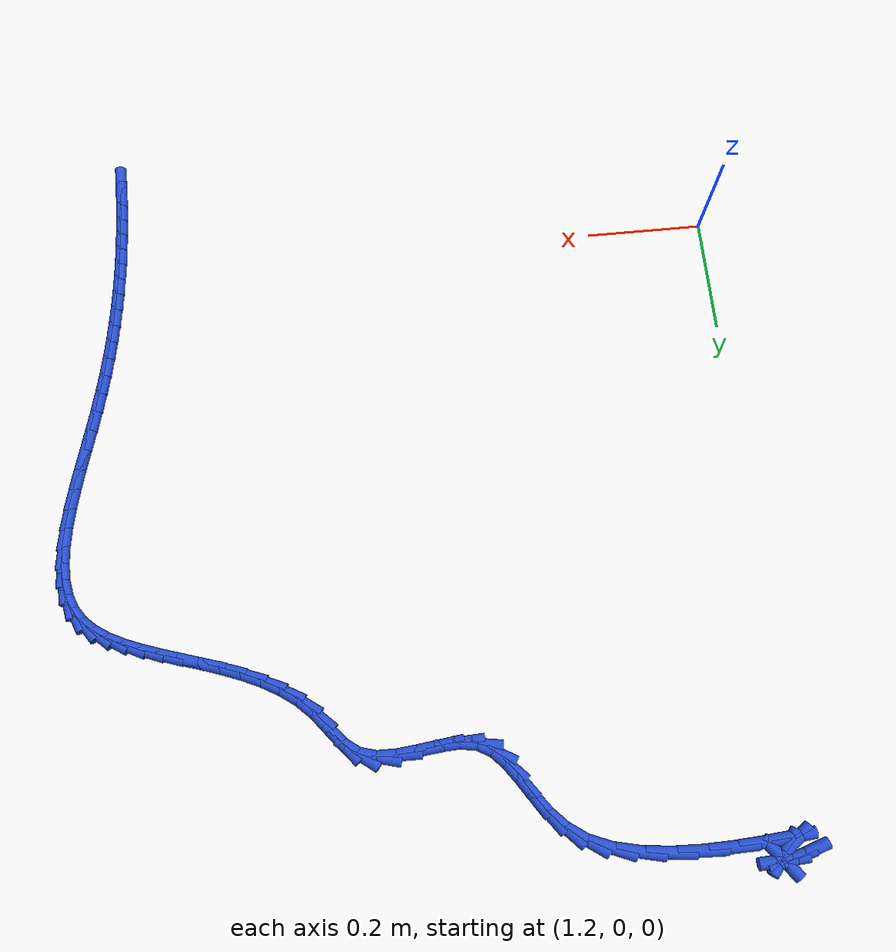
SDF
<sdf version="1.6">
 <world name="default">
  <model name="ground_plane">
   <static>1</static>
   <link name="link">
    <collision name="collision">
     <geometry><plane><normal>0 0 1</normal><size>100 100</size></plane></geometry>
     <surface><friction><ode><mu>100</mu><mu2>50</mu2></ode></friction></surface>
    </collision>
    <visual name="visual">
     <cast_shadows>0</cast_shadows>
     <geometry><plane><normal>0 0 1</normal><size>100 100</size></plane></geometry>
     <material>
      <script><uri>file://media/materials/scripts/gazebo.material</uri><name>Gazebo/WhiteGlow</name></script>
     </material>
    </visual>
   </link>
  </model>
  <model name="line">
   <link name="link_64">
    <pose>1.2322787857969568 1.0753080936451365 0.01 0 1.57 0.6627990967826926</pose>
    <collision name="collision">
     <geometry><cylinder><radius>0.01</radius><length>0.08</length></cylinder></geometry>
    </collision>
    <visual name="visual">
     <material>
      <script><name>Gazebo/Blue</name><uri>file://media/materials/scripts/gazebo.material</uri></script>
     </material>
     <geometry><cylinder><radius>0.01</radius><length>0.08</length></cylinder></geometry>
    </visual>
   </link>
   <link name="link_65">
    <pose>1.2459410916503009 1.0859728867347738 0.01 0 1.57 0.9153437566889868</pose>
    <collision name="collision">
     <geometry><cylinder><radius>0.01</radius><length>0.08</length></cylinder></geometry>
    </collision>
    <visual name="visual">
     <material>
      <script><name>Gazebo/Blue</name><uri>file://media/materials/scripts/gazebo.material</uri></script>
     </material>
     <geometry><cylinder><radius>0.01</radius><length>0.08</length></cylinder></geometry>
    </visual>
   </link>
   <link name="link_66">
    <pose>1.2517358771027867 1.093509897773049 0.01 0 1.57 -0.9247986837453452</pose>
    <collision name="collision">
     <geometry><cylinder><radius>0.01</radius><length>0.08</length></cylinder></geometry>
    </collision>
    <visual name="visual">
     <material>
      <script><name>Gazebo/Blue</name><uri>file://media/materials/scripts/gazebo.material</uri></script>
     </material>
     <geometry><cylinder><radius>0.01</radius><length>0.08</length></cylinder></geometry>
    </visual>
   </link>
   <link name="link_67">
    <pose>1.2489097912743201 1.0972584788024045 0.01 0 1.57 0.05735336319084578</pose>
    <collision name="collision">
     <geometry><cylinder><radius>0.01</radius><length>0.08</length></cylinder></geometry>
    </collision>
    <visual name="visual">
     <material>
      <script><name>Gazebo/Blue</name><uri>file://media/materials/scripts/gazebo.material</uri></script>
     </material>
     <geometry><cylinder><radius>0.01</radius><length>0.08</length></cylinder></geometry>
    </visual>
   </link>
   <link name="link_68">
    <pose>1.2367094832848076 1.0965579818652826 0.01 0 1.57 0.2545740996486978</pose>
    <collision name="collision">
     <geometry><cylinder><radius>0.01</radius><length>0.08</length></cylinder></geometry>
    </collision>
    <visual name="visual">
     <material>
      <script><name>Gazebo/Blue</name><uri>file://media/materials/scripts/gazebo.material</uri></script>
     </material>
     <geometry><cylinder><radius>0.01</radius><length>0.08</length></cylinder></geometry>
    </visual>
   </link>
   <link name="link_69">
    <pose>1.214381984725351 1.0907479206085327 0.01 0 1.57 0.33034324934001646</pose>
    <collision name="collision">
     <geometry><cylinder><radius>0.01</radius><length>0.08</length></cylinder></geometry>
    </collision>
    <visual name="visual">
     <material>
      <script><name>Gazebo/Blue</name><uri>file://media/materials/scripts/gazebo.material</uri></script>
     </material>
     <geometry><cylinder><radius>0.01</radius><length>0.08</length></cylinder></geometry>
    </visual>
   </link>
   <link name="link_77">
    <pose>1.2324341441938962 1.0644698188040418 0.01 0 1.57 0.0893377347609236</pose>
    <collision name="collision">
     <geometry><cylinder><radius>0.01</radius><length>0.08</length></cylinder></geometry>
    </collision>
    <visual name="visual">
     <material>
      <script><name>Gazebo/Blue</name><uri>file://media/materials/scripts/gazebo.material</uri></script>
     </material>
     <geometry><cylinder><radius>0.01</radius><length>0.08</length></cylinder></geometry>
    </visual>
   </link>
   <link name="link_78">
    <pose>1.2752370192145204 1.0683039364572133 0.01 0 1.57 0.061073721042350586</pose>
    <collision name="collision">
     <geometry><cylinder><radius>0.01</radius><length>0.08</length></cylinder></geometry>
    </collision>
    <visual name="visual">
     <material>
      <script><name>Gazebo/Blue</name><uri>file://media/materials/scripts/gazebo.material</uri></script>
     </material>
     <geometry><cylinder><radius>0.01</radius><length>0.08</length></cylinder></geometry>
    </visual>
   </link>
   <link name="link_79">
    <pose>1.3216587706951255 1.0711426158595567 0.01 0 1.57 0.0203929105236451</pose>
    <collision name="collision">
     <geometry><cylinder><radius>0.01</radius><length>0.08</length></cylinder></geometry>
    </collision>
    <visual name="visual">
     <material>
      <script><name>Gazebo/Blue</name><uri>file://media/materials/scripts/gazebo.material</uri></script>
     </material>
     <geometry><cylinder><radius>0.01</radius><length>0.08</length></cylinder></geometry>
    </visual>
   </link>
   <link name="link_80">
    <pose>1.3698668352110581 1.072125854909664 0.01 0 1.57 -0.035950827467834644</pose>
    <collision name="collision">
     <geometry><cylinder><radius>0.01</radius><length>0.08</length></cylinder></geometry>
    </collision>
    <visual name="visual">
     <material>
      <script><name>Gazebo/Blue</name><uri>file://media/materials/scripts/gazebo.material</uri></script>
     </material>
     <geometry><cylinder><radius>0.01</radius><length>0.08</length></cylinder></geometry>
    </visual>
   </link>
   <link name="link_81">
    <pose>1.4180286493376697 1.070393651506128 0.01 0 1.57 -0.11417934702417244</pose>
    <collision name="collision">
     <geometry><cylinder><radius>0.01</radius><length>0.08</length></cylinder></geometry>
    </collision>
    <visual name="visual">
     <material>
      <script><name>Gazebo/Blue</name><uri>file://media/materials/scripts/gazebo.material</uri></script>
     </material>
     <geometry><cylinder><radius>0.01</radius><length>0.08</length></cylinder></geometry>
    </visual>
   </link>
   <link name="link_82">
    <pose>1.4643116496503066 1.0650860035475411 0.01 0 1.57 -0.22498880895736634</pose>
    <collision name="collision">
     <geometry><cylinder><radius>0.01</radius><length>0.08</length></cylinder></geometry>
    </collision>
    <visual name="visual">
     <material>
      <script><name>Gazebo/Blue</name><uri>file://media/materials/scripts/gazebo.material</uri></script>
     </material>
     <geometry><cylinder><radius>0.01</radius><length>0.08</length></cylinder></geometry>
    </visual>
   </link>
   <link name="link_83">
    <pose>1.506883272724317 1.0553429089324953 0.01 0 1.57 -0.3857910404454256</pose>
    <collision name="collision">
     <geometry><cylinder><radius>0.01</radius><length>0.08</length></cylinder></geometry>
    </collision>
    <visual name="visual">
     <material>
      <script><name>Gazebo/Blue</name><uri>file://media/materials/scripts/gazebo.material</uri></script>
     </material>
     <geometry><cylinder><radius>0.01</radius><length>0.08</length></cylinder></geometry>
    </visual>
   </link>
   <link name="link_84">
    <pose>1.54391095513505 1.0403043655595832 0.01 0 1.57 -0.6079140005670933</pose>
    <collision name="collision">
     <geometry><cylinder><radius>0.01</radius><length>0.08</length></cylinder></geometry>
    </collision>
    <visual name="visual">
     <material>
      <script><name>Gazebo/Blue</name><uri>file://media/materials/scripts/gazebo.material</uri></script>
     </material>
     <geometry><cylinder><radius>0.01</radius><length>0.08</length></cylinder></geometry>
    </visual>
   </link>
   <link name="link_85">
    <pose>1.573930439409148 1.0194162562277398 0.01 0 1.57 -0.8117997148209194</pose>
    <collision name="collision">
     <geometry><cylinder><radius>0.01</radius><length>0.08</length></cylinder></geometry>
    </collision>
    <visual name="visual">
     <material>
      <script><name>Gazebo/Blue</name><uri>file://media/materials/scripts/gazebo.material</uri></script>
     </material>
     <geometry><cylinder><radius>0.01</radius><length>0.08</length></cylinder></geometry>
    </visual>
   </link>
   <link name="link_86">
    <pose>1.597905292503343 0.9941408168011628 0.01 0 1.57 -0.9429371162151671</pose>
    <collision name="collision">
     <geometry><cylinder><radius>0.01</radius><length>0.08</length></cylinder></geometry>
    </collision>
    <visual name="visual">
     <material>
      <script><name>Gazebo/Blue</name><uri>file://media/materials/scripts/gazebo.material</uri></script>
     </material>
     <geometry><cylinder><radius>0.01</radius><length>0.08</length></cylinder></geometry>
    </visual>
   </link>
   <link name="link_87">
    <pose>1.617781917832077 0.966756546988994 0.01 0 1.57 -0.9933990592748085</pose>
    <collision name="collision">
     <geometry><cylinder><radius>0.01</radius><length>0.08</length></cylinder></geometry>
    </collision>
    <visual name="visual">
     <material>
      <script><name>Gazebo/Blue</name><uri>file://media/materials/scripts/gazebo.material</uri></script>
     </material>
     <geometry><cylinder><radius>0.01</radius><length>0.08</length></cylinder></geometry>
    </visual>
   </link>
   <link name="link_88">
    <pose>1.6355094973933693 0.9395442541653972 0.01 0 1.57 -0.9547756335112859</pose>
    <collision name="collision">
     <geometry><cylinder><radius>0.01</radius><length>0.08</length></cylinder></geometry>
    </collision>
    <visual name="visual">
     <material>
      <script><name>Gazebo/Blue</name><uri>file://media/materials/scripts/gazebo.material</uri></script>
     </material>
     <geometry><cylinder><radius>0.01</radius><length>0.08</length></cylinder></geometry>
    </visual>
   </link>
   <link name="link_89">
    <pose>1.6530372131852389 0.9147847457045346 0.01 0 1.57 -0.804449966875273</pose>
    <collision name="collision">
     <geometry><cylinder><radius>0.01</radius><length>0.08</length></cylinder></geometry>
    </collision>
    <visual name="visual">
     <material>
      <script><name>Gazebo/Blue</name><uri>file://media/materials/scripts/gazebo.material</uri></script>
     </material>
     <geometry><cylinder><radius>0.01</radius><length>0.08</length></cylinder></geometry>
    </visual>
   </link>
   <link name="link_90">
    <pose>1.6723142472057069 0.8947588289805707 0.01 0 1.57 -0.5152869933899991</pose>
    <collision name="collision">
     <geometry><cylinder><radius>0.01</radius><length>0.08</length></cylinder></geometry>
    </collision>
    <visual name="visual">
     <material>
      <script><name>Gazebo/Blue</name><uri>file://media/materials/scripts/gazebo.material</uri></script>
     </material>
     <geometry><cylinder><radius>0.01</radius><length>0.08</length></cylinder></geometry>
    </visual>
   </link>
   <link name="link_91">
    <pose>1.6952897814527916 0.8817473113676679 0.01 0 1.57 -0.16192909802591032</pose>
    <collision name="collision">
     <geometry><cylinder><radius>0.01</radius><length>0.08</length></cylinder></geometry>
    </collision>
    <visual name="visual">
     <material>
      <script><name>Gazebo/Blue</name><uri>file://media/materials/scripts/gazebo.material</uri></script>
     </material>
     <geometry><cylinder><radius>0.01</radius><length>0.08</length></cylinder></geometry>
    </visual>
   </link>
   <link name="link_92">
    <pose>1.7233233265135468 0.8771677677691238 0.01 0 1.57 0.04747561229783782</pose>
    <collision name="collision">
     <geometry><cylinder><radius>0.01</radius><length>0.08</length></cylinder></geometry>
    </collision>
    <visual name="visual">
     <material>
      <script><name>Gazebo/Blue</name><uri>file://media/materials/scripts/gazebo.material</uri></script>
     </material>
     <geometry><cylinder><radius>0.01</radius><length>0.08</length></cylinder></geometry>
    </visual>
   </link>
   <link name="link_93">
    <pose>1.7552093233760797 0.8786827133606366 0.01 0 1.57 0.12498669931992888</pose>
    <collision name="collision">
     <geometry><cylinder><radius>0.01</radius><length>0.08</length></cylinder></geometry>
    </collision>
    <visual name="visual">
     <material>
      <script><name>Gazebo/Blue</name><uri>file://media/materials/scripts/gazebo.material</uri></script>
     </material>
     <geometry><cylinder><radius>0.01</radius><length>0.08</length></cylinder></geometry>
    </visual>
   </link>
   <link name="link_94">
    <pose>1.789044913613421 0.882933871931693 0.01 0 1.57 0.10670145139160071</pose>
    <collision name="collision">
     <geometry><cylinder><radius>0.01</radius><length>0.08</length></cylinder></geometry>
    </collision>
    <visual name="visual">
     <material>
      <script><name>Gazebo/Blue</name><uri>file://media/materials/scripts/gazebo.material</uri></script>
     </material>
     <geometry><cylinder><radius>0.01</radius><length>0.08</length></cylinder></geometry>
    </visual>
   </link>
   <link name="link_95">
    <pose>1.8229272247840544 0.8865629467555886 0.01 0 1.57 -0.01096889431186168</pose>
    <collision name="collision">
     <geometry><cylinder><radius>0.01</radius><length>0.08</length></cylinder></geometry>
    </collision>
    <visual name="visual">
     <material>
      <script><name>Gazebo/Blue</name><uri>file://media/materials/scripts/gazebo.material</uri></script>
     </material>
     <geometry><cylinder><radius>0.01</radius><length>0.08</length></cylinder></geometry>
    </visual>
   </link>
   <link name="link_96">
    <pose>1.8549533844464638 0.8862116411056183 0.01 0 1.57 -0.2656185449410486</pose>
    <collision name="collision">
     <geometry><cylinder><radius>0.01</radius><length>0.08</length></cylinder></geometry>
    </collision>
    <visual name="visual">
     <material>
      <script><name>Gazebo/Blue</name><uri>file://media/materials/scripts/gazebo.material</uri></script>
     </material>
     <geometry><cylinder><radius>0.01</radius><length>0.08</length></cylinder></geometry>
    </visual>
   </link>
   <link name="link_97">
    <pose>1.8832205201591337 0.8785216582550777 0.01 0 1.57 -0.6513025765352614</pose>
    <collision name="collision">
     <geometry><cylinder><radius>0.01</radius><length>0.08</length></cylinder></geometry>
    </collision>
    <visual name="visual">
     <material>
      <script><name>Gazebo/Blue</name><uri>file://media/materials/scripts/gazebo.material</uri></script>
     </material>
     <geometry><cylinder><radius>0.01</radius><length>0.08</length></cylinder></geometry>
    </visual>
   </link>
   <link name="link_98">
    <pose>1.906309706336338 0.8609216539378196 0.01 0 1.57 -0.8853481739180395</pose>
    <collision name="collision">
     <geometry><cylinder><radius>0.01</radius><length>0.08</length></cylinder></geometry>
    </collision>
    <visual name="visual">
     <material>
      <script><name>Gazebo/Blue</name><uri>file://media/materials/scripts/gazebo.material</uri></script>
     </material>
     <geometry><cylinder><radius>0.01</radius><length>0.08</length></cylinder></geometry>
    </visual>
   </link>
   <link name="link_99">
    <pose>1.9262812713524913 0.8364979453273307 0.01 0 1.57 -0.8987403721315249</pose>
    <collision name="collision">
     <geometry><cylinder><radius>0.01</radius><length>0.08</length></cylinder></geometry>
    </collision>
    <visual name="visual">
     <material>
      <script><name>Gazebo/Blue</name><uri>file://media/materials/scripts/gazebo.material</uri></script>
     </material>
     <geometry><cylinder><radius>0.01</radius><length>0.08</length></cylinder></geometry>
    </visual>
   </link>
   <link name="link_100">
    <pose>1.9467174371078002 0.810811657740041 0.01 0 1.57 -0.7631339550228122</pose>
    <collision name="collision">
     <geometry><cylinder><radius>0.01</radius><length>0.08</length></cylinder></geometry>
    </collision>
    <visual name="visual">
     <material>
      <script><name>Gazebo/Blue</name><uri>file://media/materials/scripts/gazebo.material</uri></script>
     </material>
     <geometry><cylinder><radius>0.01</radius><length>0.08</length></cylinder></geometry>
    </visual>
   </link>
   <link name="link_101">
    <pose>1.970353862017701 0.7882049692925082 0.01 0 1.57 -0.622940007990397</pose>
    <collision name="collision">
     <geometry><cylinder><radius>0.01</radius><length>0.08</length></cylinder></geometry>
    </collision>
    <visual name="visual">
     <material>
      <script><name>Gazebo/Blue</name><uri>file://media/materials/scripts/gazebo.material</uri></script>
     </material>
     <geometry><cylinder><radius>0.01</radius><length>0.08</length></cylinder></geometry>
    </visual>
   </link>
   <link name="link_102">
    <pose>1.9971208306777959 0.7689767357358488 0.01 0 1.57 -0.5104850724294512</pose>
    <collision name="collision">
     <geometry><cylinder><radius>0.01</radius><length>0.08</length></cylinder></geometry>
    </collision>
    <visual name="visual">
     <material>
      <script><name>Gazebo/Blue</name><uri>file://media/materials/scripts/gazebo.material</uri></script>
     </material>
     <geometry><cylinder><radius>0.01</radius><length>0.08</length></cylinder></geometry>
    </visual>
   </link>
   <link name="link_103">
    <pose>2.0263727362816715 0.752595793459987 0.01 0 1.57 -0.4248250013085162</pose>
    <collision name="collision">
     <geometry><cylinder><radius>0.01</radius><length>0.08</length></cylinder></geometry>
    </collision>
    <visual name="visual">
     <material>
      <script><name>Gazebo/Blue</name><uri>file://media/materials/scripts/gazebo.material</uri></script>
     </material>
     <geometry><cylinder><radius>0.01</radius><length>0.08</length></cylinder></geometry>
    </visual>
   </link>
   <link name="link_104">
    <pose>2.057463972022912 0.7385309788548476 0.01 0 1.57 -0.36346001912226156</pose>
    <collision name="collision">
     <geometry><cylinder><radius>0.01</radius><length>0.08</length></cylinder></geometry>
    </collision>
    <visual name="visual">
     <material>
      <script><name>Gazebo/Blue</name><uri>file://media/materials/scripts/gazebo.material</uri></script>
     </material>
     <geometry><cylinder><radius>0.01</radius><length>0.08</length></cylinder></geometry>
    </visual>
   </link>
   <link name="link_105">
    <pose>2.089748931095104 0.7262511283103554 0.01 0 1.57 -0.32398815911208334</pose>
    <collision name="collision">
     <geometry><cylinder><radius>0.01</radius><length>0.08</length></cylinder></geometry>
    </collision>
    <visual name="visual">
     <material>
      <script><name>Gazebo/Blue</name><uri>file://media/materials/scripts/gazebo.material</uri></script>
     </material>
     <geometry><cylinder><radius>0.01</radius><length>0.08</length></cylinder></geometry>
    </visual>
   </link>
   <link name="link_106">
    <pose>2.122582006691831 0.7152250782164346 0.01 0 1.57 -0.30493025616023683</pose>
    <collision name="collision">
     <geometry><cylinder><radius>0.01</radius><length>0.08</length></cylinder></geometry>
    </collision>
    <visual name="visual">
     <material>
      <script><name>Gazebo/Blue</name><uri>file://media/materials/scripts/gazebo.material</uri></script>
     </material>
     <geometry><cylinder><radius>0.01</radius><length>0.08</length></cylinder></geometry>
    </visual>
   </link>
   <link name="link_107">
    <pose>2.155317592006679 0.7049216649630101 0.01 0 1.57 -0.30613604962067253</pose>
    <collision name="collision">
     <geometry><cylinder><radius>0.01</radius><length>0.08</length></cylinder></geometry>
    </collision>
    <visual name="visual">
     <material>
      <script><name>Gazebo/Blue</name><uri>file://media/materials/scripts/gazebo.material</uri></script>
     </material>
     <geometry><cylinder><radius>0.01</radius><length>0.08</length></cylinder></geometry>
    </visual>
   </link>
   <link name="link_108">
    <pose>2.187310080233234 0.6948097249400061 0.01 0 1.57 -0.3290952782153381</pose>
    <collision name="collision">
     <geometry><cylinder><radius>0.01</radius><length>0.08</length></cylinder></geometry>
    </collision>
    <visual name="visual">
     <material>
      <script><name>Gazebo/Blue</name><uri>file://media/materials/scripts/gazebo.material</uri></script>
     </material>
     <geometry><cylinder><radius>0.01</radius><length>0.08</length></cylinder></geometry>
    </visual>
   </link>
   <link name="link_109">
    <pose>2.2179138645650798 0.6843580945373476 0.01 0 1.57 -0.37732481878350177</pose>
    <collision name="collision">
     <geometry><cylinder><radius>0.01</radius><length>0.08</length></cylinder></geometry>
    </collision>
    <visual name="visual">
     <material>
      <script><name>Gazebo/Blue</name><uri>file://media/materials/scripts/gazebo.material</uri></script>
     </material>
     <geometry><cylinder><radius>0.01</radius><length>0.08</length></cylinder></geometry>
    </visual>
   </link>
   <link name="link_110">
    <pose>2.2464833381958025 0.6730356101449589 0.01 0 1.57 -0.45681783218908334</pose>
    <collision name="collision">
     <geometry><cylinder><radius>0.01</radius><length>0.08</length></cylinder></geometry>
    </collision>
    <visual name="visual">
     <material>
      <script><name>Gazebo/Blue</name><uri>file://media/materials/scripts/gazebo.material</uri></script>
     </material>
     <geometry><cylinder><radius>0.01</radius><length>0.08</length></cylinder></geometry>
    </visual>
   </link>
   <link name="link_111">
    <pose>2.2723728943189876 0.6603111081527647 0.01 0 1.57 -0.5760967210980454</pose>
    <collision name="collision">
     <geometry><cylinder><radius>0.01</radius><length>0.08</length></cylinder></geometry>
    </collision>
    <visual name="visual">
     <material>
      <script><name>Gazebo/Blue</name><uri>file://media/materials/scripts/gazebo.material</uri></script>
     </material>
     <geometry><cylinder><radius>0.01</radius><length>0.08</length></cylinder></geometry>
    </visual>
   </link>
   <link name="link_112">
    <pose>2.2949369261282198 0.6456534249506894 0.01 0 1.57 -0.7442377303676091</pose>
    <collision name="collision">
     <geometry><cylinder><radius>0.01</radius><length>0.08</length></cylinder></geometry>
    </collision>
    <visual name="visual">
     <material>
      <script><name>Gazebo/Blue</name><uri>file://media/materials/scripts/gazebo.material</uri></script>
     </material>
     <geometry><cylinder><radius>0.01</radius><length>0.08</length></cylinder></geometry>
    </visual>
   </link>
   <link name="link_113">
    <pose>2.3135298268170836 0.6285313969286579 0.01 0 1.57 -0.9622994435959389</pose>
    <collision name="collision">
     <geometry><cylinder><radius>0.01</radius><length>0.08</length></cylinder></geometry>
    </collision>
    <visual name="visual">
     <material>
      <script><name>Gazebo/Blue</name><uri>file://media/materials/scripts/gazebo.material</uri></script>
     </material>
     <geometry><cylinder><radius>0.01</radius><length>0.08</length></cylinder></geometry>
    </visual>
   </link>
   <link name="link_114">
    <pose>2.3275317237587765 0.6084334756344146 0.01 0 1.57 -1.1868864642344223</pose>
    <collision name="collision">
     <geometry><cylinder><radius>0.01</radius><length>0.08</length></cylinder></geometry>
    </collision>
    <visual name="visual">
     <material>
      <script><name>Gazebo/Blue</name><uri>file://media/materials/scripts/gazebo.material</uri></script>
     </material>
     <geometry><cylinder><radius>0.01</radius><length>0.08</length></cylinder></geometry>
    </visual>
   </link>
   <link name="link_115">
    <pose>2.336885758878763 0.5852772546930878 0.01 0 1.57 -1.3726277401988163</pose>
    <collision name="collision">
     <geometry><cylinder><radius>0.01</radius><length>0.08</length></cylinder></geometry>
    </collision>
    <visual name="visual">
     <material>
      <script><name>Gazebo/Blue</name><uri>file://media/materials/scripts/gazebo.material</uri></script>
     </material>
     <geometry><cylinder><radius>0.01</radius><length>0.08</length></cylinder></geometry>
    </visual>
   </link>
   <link name="link_116">
    <pose>2.342082501198636 0.5593975887052113 0.01 0 1.57 -1.5158930284974177</pose>
    <collision name="collision">
     <geometry><cylinder><radius>0.01</radius><length>0.08</length></cylinder></geometry>
    </collision>
    <visual name="visual">
     <material>
      <script><name>Gazebo/Blue</name><uri>file://media/materials/scripts/gazebo.material</uri></script>
     </material>
     <geometry><cylinder><radius>0.01</radius><length>0.08</length></cylinder></geometry>
    </visual>
   </link>
   <link name="link_117">
    <pose>2.3436351356579888 0.5311465706215426 0.01 0 1.57 1.5187036237567815</pose>
    <collision name="collision">
     <geometry><cylinder><radius>0.01</radius><length>0.08</length></cylinder></geometry>
    </collision>
    <visual name="visual">
     <material>
      <script><name>Gazebo/Blue</name><uri>file://media/materials/scripts/gazebo.material</uri></script>
     </material>
     <geometry><cylinder><radius>0.01</radius><length>0.08</length></cylinder></geometry>
    </visual>
   </link>
   <link name="link_118">
    <pose>2.342056847196416 0.5008762933928397 0.01 0 1.57 1.4401618771861944</pose>
    <collision name="collision">
     <geometry><cylinder><radius>0.01</radius><length>0.08</length></cylinder></geometry>
    </collision>
    <visual name="visual">
     <material>
      <script><name>Gazebo/Blue</name><uri>file://media/materials/scripts/gazebo.material</uri></script>
     </material>
     <geometry><cylinder><radius>0.01</radius><length>0.08</length></cylinder></geometry>
    </visual>
   </link>
   <link name="link_119">
    <pose>2.337860820753511 0.4689388499698602 0.01 0 1.57 1.3835394272772927</pose>
    <collision name="collision">
     <geometry><cylinder><radius>0.01</radius><length>0.08</length></cylinder></geometry>
    </collision>
    <visual name="visual">
     <material>
      <script><name>Gazebo/Blue</name><uri>file://media/materials/scripts/gazebo.material</uri></script>
     </material>
     <geometry><cylinder><radius>0.01</radius><length>0.08</length></cylinder></geometry>
    </visual>
   </link>
   <link name="link_120">
    <pose>2.331560241268868 0.43568633330336204 0.01 0 1.57 1.344106709751753</pose>
    <collision name="collision">
     <geometry><cylinder><radius>0.01</radius><length>0.08</length></cylinder></geometry>
    </collision>
    <visual name="visual">
     <material>
      <script><name>Gazebo/Blue</name><uri>file://media/materials/scripts/gazebo.material</uri></script>
     </material>
     <geometry><cylinder><radius>0.01</radius><length>0.08</length></cylinder></geometry>
    </visual>
   </link>
   <link name="link_121">
    <pose>2.323668293682081 0.40147083634410274 0.01 0 1.57 1.3187084666460172</pose>
    <collision name="collision">
     <geometry><cylinder><radius>0.01</radius><length>0.08</length></cylinder></geometry>
    </collision>
    <visual name="visual">
     <material>
      <script><name>Gazebo/Blue</name><uri>file://media/materials/scripts/gazebo.material</uri></script>
     </material>
     <geometry><cylinder><radius>0.01</radius><length>0.08</length></cylinder></geometry>
    </visual>
   </link>
   <link name="link_122">
    <pose>2.314698162932745 0.3666444520428404 0.01 0 1.57 1.3054346988096166</pose>
    <collision name="collision">
     <geometry><cylinder><radius>0.01</radius><length>0.08</length></cylinder></geometry>
    </collision>
    <visual name="visual">
     <material>
      <script><name>Gazebo/Blue</name><uri>file://media/materials/scripts/gazebo.material</uri></script>
     </material>
     <geometry><cylinder><radius>0.01</radius><length>0.08</length></cylinder></geometry>
    </visual>
   </link>
   <link name="link_123">
    <pose>2.3051630339604525 0.33155927335033314 0.01 0 1.57 1.3033821860151078</pose>
    <collision name="collision">
     <geometry><cylinder><radius>0.01</radius><length>0.08</length></cylinder></geometry>
    </collision>
    <visual name="visual">
     <material>
      <script><name>Gazebo/Blue</name><uri>file://media/materials/scripts/gazebo.material</uri></script>
     </material>
     <geometry><cylinder><radius>0.01</radius><length>0.08</length></cylinder></geometry>
    </visual>
   </link>
   <link name="link_124">
    <pose>2.295576091704798 0.29656739321733755 0.01 0 1.57 1.312541860084366</pose>
    <collision name="collision">
     <geometry><cylinder><radius>0.01</radius><length>0.08</length></cylinder></geometry>
    </collision>
    <visual name="visual">
     <material>
      <script><name>Gazebo/Blue</name><uri>file://media/materials/scripts/gazebo.material</uri></script>
     </material>
     <geometry><cylinder><radius>0.01</radius><length>0.08</length></cylinder></geometry>
    </visual>
   </link>
   <link name="link_125">
    <pose>2.286450521105376 0.26202090459461214 0.01 0 1.57 1.3317846937234477</pose>
    <collision name="collision">
     <geometry><cylinder><radius>0.01</radius><length>0.08</length></cylinder></geometry>
    </collision>
    <visual name="visual">
     <material>
      <script><name>Gazebo/Blue</name><uri>file://media/materials/scripts/gazebo.material</uri></script>
     </material>
     <geometry><cylinder><radius>0.01</radius><length>0.08</length></cylinder></geometry>
    </visual>
   </link>
   <link name="link_126">
    <pose>2.278210613486724 0.2282049734711137 0.01 0 1.57 1.3535139634608735</pose>
    <collision name="collision">
     <geometry><cylinder><radius>0.01</radius><length>0.08</length></cylinder></geometry>
    </collision>
    <visual name="visual">
     <material>
      <script><name>Gazebo/Blue</name><uri>file://media/materials/scripts/gazebo.material</uri></script>
     </material>
     <geometry><cylinder><radius>0.01</radius><length>0.08</length></cylinder></geometry>
    </visual>
   </link>
   <link name="link_127">
    <pose>2.270907338944146 0.19512369665402388 0.01 0 1.57 1.3754661673757167</pose>
    <collision name="collision">
     <geometry><cylinder><radius>0.01</radius><length>0.08</length></cylinder></geometry>
    </collision>
    <visual name="visual">
     <material>
      <script><name>Gazebo/Blue</name><uri>file://media/materials/scripts/gazebo.material</uri></script>
     </material>
     <geometry><cylinder><radius>0.01</radius><length>0.08</length></cylinder></geometry>
    </visual>
   </link>
   <link name="link_128">
    <pose>2.264493681358611 0.1627073982772079 0.01 0 1.57 1.3974780041109183</pose>
    <collision name="collision">
     <geometry><cylinder><radius>0.01</radius><length>0.08</length></cylinder></geometry>
    </collision>
    <visual name="visual">
     <material>
      <script><name>Gazebo/Blue</name><uri>file://media/materials/scripts/gazebo.material</uri></script>
     </material>
     <geometry><cylinder><radius>0.01</radius><length>0.08</length></cylinder></geometry>
    </visual>
   </link>
   <link name="link_129">
    <pose>2.2589226242117575 0.1308864021738752 0.01 0 1.57 1.4193708195004981</pose>
    <collision name="collision">
     <geometry><cylinder><radius>0.01</radius><length>0.08</length></cylinder></geometry>
    </collision>
    <visual name="visual">
     <material>
      <script><name>Gazebo/Blue</name><uri>file://media/materials/scripts/gazebo.material</uri></script>
     </material>
     <geometry><cylinder><radius>0.01</radius><length>0.08</length></cylinder></geometry>
    </visual>
   </link>
   <link name="link_130">
    <pose>2.2541471509852213 0.09959103217723547 0.01 0 1.57 1.4409543724583078</pose>
    <collision name="collision">
     <geometry><cylinder><radius>0.01</radius><length>0.08</length></cylinder></geometry>
    </collision>
    <visual name="visual">
     <material>
      <script><name>Gazebo/Blue</name><uri>file://media/materials/scripts/gazebo.material</uri></script>
     </material>
     <geometry><cylinder><radius>0.01</radius><length>0.08</length></cylinder></geometry>
    </visual>
   </link>
   <link name="link_131">
    <pose>2.2501202451606392 0.06875161212049832 0.01 0 1.57 1.4620314785129394</pose>
    <collision name="collision">
     <geometry><cylinder><radius>0.01</radius><length>0.08</length></cylinder></geometry>
    </collision>
    <visual name="visual">
     <material>
      <script><name>Gazebo/Blue</name><uri>file://media/materials/scripts/gazebo.material</uri></script>
     </material>
     <geometry><cylinder><radius>0.01</radius><length>0.08</length></cylinder></geometry>
    </visual>
   </link>
   <link name="link_132">
    <pose>2.2467948902196464 0.03829846583687327 0.01 0 1.57 1.4824032935072042</pose>
    <collision name="collision">
     <geometry><cylinder><radius>0.01</radius><length>0.08</length></cylinder></geometry>
    </collision>
    <visual name="visual">
     <material>
      <script><name>Gazebo/Blue</name><uri>file://media/materials/scripts/gazebo.material</uri></script>
     </material>
     <geometry><cylinder><radius>0.01</radius><length>0.08</length></cylinder></geometry>
    </visual>
   </link>
   <link name="link_133">
    <pose>2.244124069643879 0.008161917159569928 0.01 0 1.57 1.5018749356814312</pose>
    <collision name="collision">
     <geometry><cylinder><radius>0.01</radius><length>0.08</length></cylinder></geometry>
    </collision>
    <visual name="visual">
     <material>
      <script><name>Gazebo/Blue</name><uri>file://media/materials/scripts/gazebo.material</uri></script>
     </material>
     <geometry><cylinder><radius>0.01</radius><length>0.08</length></cylinder></geometry>
    </visual>
   </link>
   <link name="link_134">
    <pose>2.2420607669149746 -0.02172771007820168 0.01 0 1.57 1.520261102284428</pose>
    <collision name="collision">
     <geometry><cylinder><radius>0.01</radius><length>0.08</length></cylinder></geometry>
    </collision>
    <visual name="visual">
     <material>
      <script><name>Gazebo/Blue</name><uri>file://media/materials/scripts/gazebo.material</uri></script>
     </material>
     <geometry><cylinder><radius>0.01</radius><length>0.08</length></cylinder></geometry>
    </visual>
   </link>
   <link name="link_135">
    <pose>2.2405579655145687 -0.05144009204323289 0.01 0 1.57 1.537391333595772</pose>
    <collision name="collision">
     <geometry><cylinder><radius>0.01</radius><length>0.08</length></cylinder></geometry>
    </collision>
    <visual name="visual">
     <material>
      <script><name>Gazebo/Blue</name><uri>file://media/materials/scripts/gazebo.material</uri></script>
     </material>
     <geometry><cylinder><radius>0.01</radius><length>0.08</length></cylinder></geometry>
    </visual>
   </link>
   <link name="link_136">
    <pose>2.2395686489242967 -0.08104490490231406 0.01 0 1.57 1.55311461322802</pose>
    <collision name="collision">
     <geometry><cylinder><radius>0.01</radius><length>0.08</length></cylinder></geometry>
    </collision>
    <visual name="visual">
     <material>
      <script><name>Gazebo/Blue</name><uri>file://media/materials/scripts/gazebo.material</uri></script>
     </material>
     <geometry><cylinder><radius>0.01</radius><length>0.08</length></cylinder></geometry>
    </visual>
   </link>
   <link name="link_137">
    <pose>2.2390458006257963 -0.11061182482223433 0.01 0 1.57 1.5673029494745938</pose>
    <collision name="collision">
     <geometry><cylinder><radius>0.01</radius><length>0.08</length></cylinder></geometry>
    </collision>
    <visual name="visual">
     <material>
      <script><name>Gazebo/Blue</name><uri>file://media/materials/scripts/gazebo.material</uri></script>
     </material>
     <geometry><cylinder><radius>0.01</radius><length>0.08</length></cylinder></geometry>
    </visual>
   </link>
   <link name="link_138">
    <pose>2.238942400865114 -0.14021049985267667 0.01 0 1.57 -1.5617859374133634</pose>
    <collision name="collision">
     <geometry><cylinder><radius>0.01</radius><length>0.08</length></cylinder></geometry>
    </collision>
    <visual name="visual">
     <material>
      <script><name>Gazebo/Blue</name><uri>file://media/materials/scripts/gazebo.material</uri></script>
     </material>
     <geometry><cylinder><radius>0.01</radius><length>0.08</length></cylinder></geometry>
    </visual>
   </link>
   <link name="link_139">
    <pose>2.239209897378097 -0.16989726060483296 0.01 0 1.57 -1.5511367854607256</pose>
    <collision name="collision">
     <geometry><cylinder><radius>0.01</radius><length>0.08</length></cylinder></geometry>
    </collision>
    <visual name="visual">
     <material>
      <script><name>Gazebo/Blue</name><uri>file://media/materials/scripts/gazebo.material</uri></script>
     </material>
     <geometry><cylinder><radius>0.01</radius><length>0.08</length></cylinder></geometry>
    </visual>
   </link>
  </model>
 </world>
</sdf>
